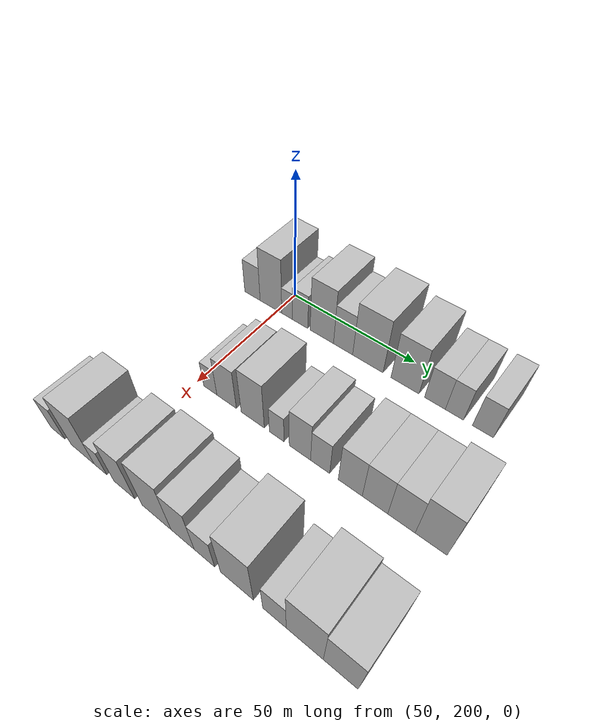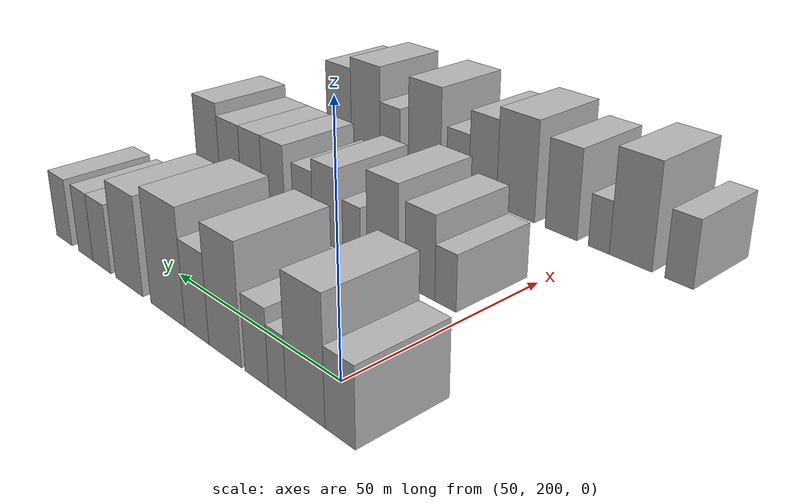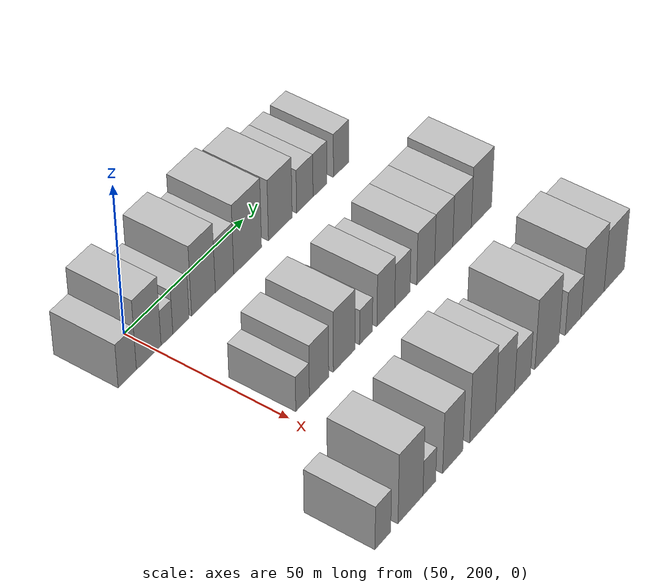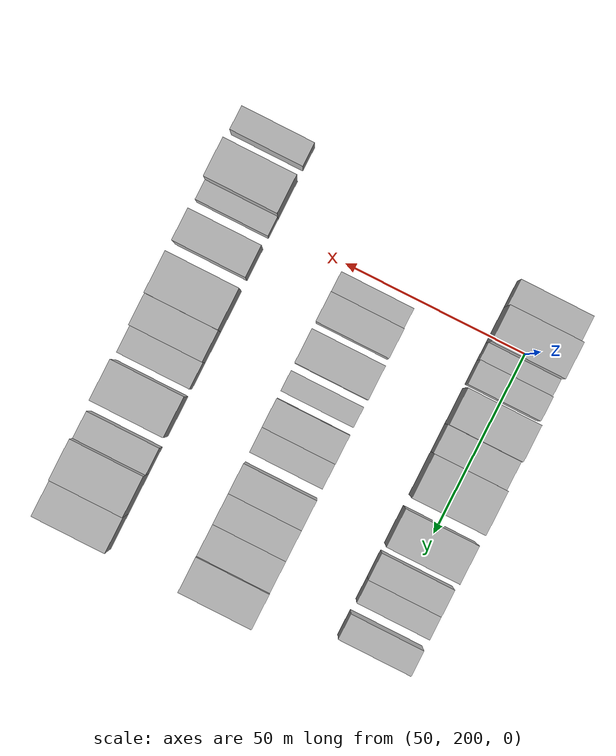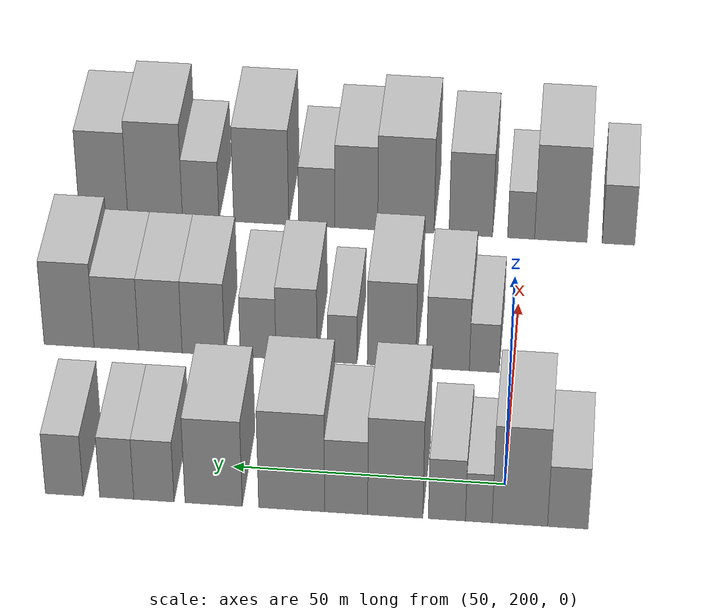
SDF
<sdf version="1.6">
 <world name="default">
  <model name="building_65">
   <static>1</static>
   <pose>50.0000 188.2694 0 0.000000 0.000000 0.000000</pose>
   <link name="link">
    <pose>0 0 7.50 0 0 0</pose>
    <collision name="collision"><geometry><box><size>20.0000 7.2713 15.0000</size></box></geometry></collision>
    <visual name="visual">
     <cast_shadows>0</cast_shadows>
     <geometry><box><size>20.0000 7.2713 15.0000</size></box></geometry>
     <material>
      <script>
       <uri>model://HANNAS_wall/materials/scripts</uri>
       <uri>model://HANNAS_wall/materials/textures</uri>
       <name>vrc/HANNAS_wall</name>
      </script>
     </material>
    </visual>
   </link>
  </model>
  <model name="building_66">
   <static>1</static>
   <pose>50.0000 196.8892 0 0.000000 0.000000 0.000000</pose>
   <link name="link">
    <pose>0 0 12.00 0 0 0</pose>
    <collision name="collision"><geometry><box><size>20.0000 9.9684 24.0000</size></box></geometry></collision>
    <visual name="visual">
     <cast_shadows>0</cast_shadows>
     <geometry><box><size>20.0000 9.9684 24.0000</size></box></geometry>
     <material>
      <script>
       <uri>model://HANNAS_wall/materials/scripts</uri>
       <uri>model://HANNAS_wall/materials/textures</uri>
       <name>vrc/HANNAS_wall</name>
      </script>
     </material>
    </visual>
   </link>
  </model>
  <model name="building_67">
   <static>1</static>
   <pose>50.0000 204.2798 0 0.000000 0.000000 0.000000</pose>
   <link name="link">
    <pose>0 0 6.00 0 0 0</pose>
    <collision name="collision"><geometry><box><size>20.0000 4.8129 12.0000</size></box></geometry></collision>
    <visual name="visual">
     <cast_shadows>0</cast_shadows>
     <geometry><box><size>20.0000 4.8129 12.0000</size></box></geometry>
     <material>
      <script>
       <uri>model://HANNAS_wall/materials/scripts</uri>
       <uri>model://HANNAS_wall/materials/textures</uri>
       <name>vrc/HANNAS_wall</name>
      </script>
     </material>
    </visual>
   </link>
  </model>
  <model name="building_68">
   <static>1</static>
   <pose>50.0000 210.0441 0 0.000000 0.000000 0.000000</pose>
   <link name="link">
    <pose>0 0 7.50 0 0 0</pose>
    <collision name="collision"><geometry><box><size>20.0000 6.7156 15.0000</size></box></geometry></collision>
    <visual name="visual">
     <cast_shadows>0</cast_shadows>
     <geometry><box><size>20.0000 6.7156 15.0000</size></box></geometry>
     <material>
      <script>
       <uri>model://HANNAS_wall/materials/scripts</uri>
       <uri>model://HANNAS_wall/materials/textures</uri>
       <name>vrc/HANNAS_wall</name>
      </script>
     </material>
    </visual>
   </link>
  </model>
  <model name="building_69">
   <static>1</static>
   <pose>50.0000 219.3858 0 0.000000 0.000000 0.000000</pose>
   <link name="link">
    <pose>0 0 12.00 0 0 0</pose>
    <collision name="collision"><geometry><box><size>20.0000 9.9680 24.0000</size></box></geometry></collision>
    <visual name="visual">
     <cast_shadows>0</cast_shadows>
     <geometry><box><size>20.0000 9.9680 24.0000</size></box></geometry>
     <material>
      <script>
       <uri>model://HANNAS_wall/materials/scripts</uri>
       <uri>model://HANNAS_wall/materials/textures</uri>
       <name>vrc/HANNAS_wall</name>
      </script>
     </material>
    </visual>
   </link>
  </model>
  <model name="building_70">
   <static>1</static>
   <pose>50.0000 228.2781 0 0.000000 0.000000 0.000000</pose>
   <link name="link">
    <pose>0 0 9.00 0 0 0</pose>
    <collision name="collision"><geometry><box><size>20.0000 7.8165 18.0000</size></box></geometry></collision>
    <visual name="visual">
     <cast_shadows>0</cast_shadows>
     <geometry><box><size>20.0000 7.8165 18.0000</size></box></geometry>
     <material>
      <script>
       <uri>model://HANNAS_wall/materials/scripts</uri>
       <uri>model://HANNAS_wall/materials/textures</uri>
       <name>vrc/HANNAS_wall</name>
      </script>
     </material>
    </visual>
   </link>
  </model>
  <model name="building_71">
   <static>1</static>
   <pose>50.0000 238.1825 0 0.000000 0.000000 0.000000</pose>
   <link name="link">
    <pose>0 0 12.00 0 0 0</pose>
    <collision name="collision"><geometry><box><size>20.0000 11.9923 24.0000</size></box></geometry></collision>
    <visual name="visual">
     <cast_shadows>0</cast_shadows>
     <geometry><box><size>20.0000 11.9923 24.0000</size></box></geometry>
     <material>
      <script>
       <uri>model://HANNAS_wall/materials/scripts</uri>
       <uri>model://HANNAS_wall/materials/textures</uri>
       <name>vrc/HANNAS_wall</name>
      </script>
     </material>
    </visual>
   </link>
  </model>
  <model name="building_72">
   <static>1</static>
   <pose>50.0000 252.4010 0 0.000000 0.000000 0.000000</pose>
   <link name="link">
    <pose>0 0 10.50 0 0 0</pose>
    <collision name="collision"><geometry><box><size>20.0000 10.4447 21.0000</size></box></geometry></collision>
    <visual name="visual">
     <cast_shadows>0</cast_shadows>
     <geometry><box><size>20.0000 10.4447 21.0000</size></box></geometry>
     <material>
      <script>
       <uri>model://HANNAS_wall/materials/scripts</uri>
       <uri>model://HANNAS_wall/materials/textures</uri>
       <name>vrc/HANNAS_wall</name>
      </script>
     </material>
    </visual>
   </link>
  </model>
  <model name="building_73">
   <static>1</static>
   <pose>50.0000 263.3073 0 0.000000 0.000000 0.000000</pose>
   <link name="link">
    <pose>0 0 7.50 0 0 0</pose>
    <collision name="collision"><geometry><box><size>20.0000 7.3680 15.0000</size></box></geometry></collision>
    <visual name="visual">
     <cast_shadows>0</cast_shadows>
     <geometry><box><size>20.0000 7.3680 15.0000</size></box></geometry>
     <material>
      <script>
       <uri>model://HANNAS_wall/materials/scripts</uri>
       <uri>model://HANNAS_wall/materials/textures</uri>
       <name>vrc/HANNAS_wall</name>
      </script>
     </material>
    </visual>
   </link>
  </model>
  <model name="building_74">
   <static>1</static>
   <pose>50.0000 270.1238 0 0.000000 0.000000 0.000000</pose>
   <link name="link">
    <pose>0 0 7.50 0 0 0</pose>
    <collision name="collision"><geometry><box><size>20.0000 6.2649 15.0000</size></box></geometry></collision>
    <visual name="visual">
     <cast_shadows>0</cast_shadows>
     <geometry><box><size>20.0000 6.2649 15.0000</size></box></geometry>
     <material>
      <script>
       <uri>model://HANNAS_wall/materials/scripts</uri>
       <uri>model://HANNAS_wall/materials/textures</uri>
       <name>vrc/HANNAS_wall</name>
      </script>
     </material>
    </visual>
   </link>
  </model>
  <model name="building_75">
   <static>1</static>
   <pose>50.0000 279.7421 0 0.000000 0.000000 0.000000</pose>
   <link name="link">
    <pose>0 0 7.50 0 0 0</pose>
    <collision name="collision"><geometry><box><size>20.0000 6.9716 15.0000</size></box></geometry></collision>
    <visual name="visual">
     <cast_shadows>0</cast_shadows>
     <geometry><box><size>20.0000 6.9716 15.0000</size></box></geometry>
     <material>
      <script>
       <uri>model://HANNAS_wall/materials/scripts</uri>
       <uri>model://HANNAS_wall/materials/textures</uri>
       <name>vrc/HANNAS_wall</name>
      </script>
     </material>
    </visual>
   </link>
  </model>
  <model name="building_153">
   <static>1</static>
   <pose>90.0000 205.6087 0 0.000000 0.000000 0.000000</pose>
   <link name="link">
    <pose>0 0 6.00 0 0 0</pose>
    <collision name="collision"><geometry><box><size>20.0000 5.6764 12.0000</size></box></geometry></collision>
    <visual name="visual">
     <cast_shadows>0</cast_shadows>
     <geometry><box><size>20.0000 5.6764 12.0000</size></box></geometry>
     <material>
      <script>
       <uri>model://HANNAS_wall/materials/scripts</uri>
       <uri>model://HANNAS_wall/materials/textures</uri>
       <name>vrc/HANNAS_wall</name>
      </script>
     </material>
    </visual>
   </link>
  </model>
  <model name="building_154">
   <static>1</static>
   <pose>90.0000 212.5434 0 0.000000 0.000000 0.000000</pose>
   <link name="link">
    <pose>0 0 9.00 0 0 0</pose>
    <collision name="collision"><geometry><box><size>20.0000 8.1929 18.0000</size></box></geometry></collision>
    <visual name="visual">
     <cast_shadows>0</cast_shadows>
     <geometry><box><size>20.0000 8.1929 18.0000</size></box></geometry>
     <material>
      <script>
       <uri>model://HANNAS_wall/materials/scripts</uri>
       <uri>model://HANNAS_wall/materials/textures</uri>
       <name>vrc/HANNAS_wall</name>
      </script>
     </material>
    </visual>
   </link>
  </model>
  <model name="building_155">
   <static>1</static>
   <pose>90.0000 223.2906 0 0.000000 0.000000 0.000000</pose>
   <link name="link">
    <pose>0 0 10.50 0 0 0</pose>
    <collision name="collision"><geometry><box><size>20.0000 9.3016 21.0000</size></box></geometry></collision>
    <visual name="visual">
     <cast_shadows>0</cast_shadows>
     <geometry><box><size>20.0000 9.3016 21.0000</size></box></geometry>
     <material>
      <script>
       <uri>model://HANNAS_wall/materials/scripts</uri>
       <uri>model://HANNAS_wall/materials/textures</uri>
       <name>vrc/HANNAS_wall</name>
      </script>
     </material>
    </visual>
   </link>
  </model>
  <model name="building_156">
   <static>1</static>
   <pose>90.0000 232.7520 0 0.000000 0.000000 0.000000</pose>
   <link name="link">
    <pose>0 0 6.00 0 0 0</pose>
    <collision name="collision"><geometry><box><size>20.0000 5.6211 12.0000</size></box></geometry></collision>
    <visual name="visual">
     <cast_shadows>0</cast_shadows>
     <geometry><box><size>20.0000 5.6211 12.0000</size></box></geometry>
     <material>
      <script>
       <uri>model://HANNAS_wall/materials/scripts</uri>
       <uri>model://HANNAS_wall/materials/textures</uri>
       <name>vrc/HANNAS_wall</name>
      </script>
     </material>
    </visual>
   </link>
  </model>
  <model name="building_157">
   <static>1</static>
   <pose>90.0000 241.5173 0 0.000000 0.000000 0.000000</pose>
   <link name="link">
    <pose>0 0 9.00 0 0 0</pose>
    <collision name="collision"><geometry><box><size>20.0000 7.9096 18.0000</size></box></geometry></collision>
    <visual name="visual">
     <cast_shadows>0</cast_shadows>
     <geometry><box><size>20.0000 7.9096 18.0000</size></box></geometry>
     <material>
      <script>
       <uri>model://HANNAS_wall/materials/scripts</uri>
       <uri>model://HANNAS_wall/materials/textures</uri>
       <name>vrc/HANNAS_wall</name>
      </script>
     </material>
    </visual>
   </link>
  </model>
  <model name="building_158">
   <static>1</static>
   <pose>90.0000 248.9060 0 0.000000 0.000000 0.000000</pose>
   <link name="link">
    <pose>0 0 7.50 0 0 0</pose>
    <collision name="collision"><geometry><box><size>20.0000 6.8679 15.0000</size></box></geometry></collision>
    <visual name="visual">
     <cast_shadows>0</cast_shadows>
     <geometry><box><size>20.0000 6.8679 15.0000</size></box></geometry>
     <material>
      <script>
       <uri>model://HANNAS_wall/materials/scripts</uri>
       <uri>model://HANNAS_wall/materials/textures</uri>
       <name>vrc/HANNAS_wall</name>
      </script>
     </material>
    </visual>
   </link>
  </model>
  <model name="building_159">
   <static>1</static>
   <pose>90.0000 259.4456 0 0.000000 0.000000 0.000000</pose>
   <link name="link">
    <pose>0 0 9.00 0 0 0</pose>
    <collision name="collision"><geometry><box><size>20.0000 8.2114 18.0000</size></box></geometry></collision>
    <visual name="visual">
     <cast_shadows>0</cast_shadows>
     <geometry><box><size>20.0000 8.2114 18.0000</size></box></geometry>
     <material>
      <script>
       <uri>model://HANNAS_wall/materials/scripts</uri>
       <uri>model://HANNAS_wall/materials/textures</uri>
       <name>vrc/HANNAS_wall</name>
      </script>
     </material>
    </visual>
   </link>
  </model>
  <model name="building_160">
   <static>1</static>
   <pose>90.0000 267.7454 0 0.000000 0.000000 0.000000</pose>
   <link name="link">
    <pose>0 0 9.00 0 0 0</pose>
    <collision name="collision"><geometry><box><size>20.0000 8.3880 18.0000</size></box></geometry></collision>
    <visual name="visual">
     <cast_shadows>0</cast_shadows>
     <geometry><box><size>20.0000 8.3880 18.0000</size></box></geometry>
     <material>
      <script>
       <uri>model://HANNAS_wall/materials/scripts</uri>
       <uri>model://HANNAS_wall/materials/textures</uri>
       <name>vrc/HANNAS_wall</name>
      </script>
     </material>
    </visual>
   </link>
  </model>
  <model name="building_161">
   <static>1</static>
   <pose>90.0000 276.2699 0 0.000000 0.000000 0.000000</pose>
   <link name="link">
    <pose>0 0 9.00 0 0 0</pose>
    <collision name="collision"><geometry><box><size>20.0000 8.6611 18.0000</size></box></geometry></collision>
    <visual name="visual">
     <cast_shadows>0</cast_shadows>
     <geometry><box><size>20.0000 8.6611 18.0000</size></box></geometry>
     <material>
      <script>
       <uri>model://HANNAS_wall/materials/scripts</uri>
       <uri>model://HANNAS_wall/materials/textures</uri>
       <name>vrc/HANNAS_wall</name>
      </script>
     </material>
    </visual>
   </link>
  </model>
  <model name="building_162">
   <static>1</static>
   <pose>90.0000 285.4371 0 0.000000 0.000000 0.000000</pose>
   <link name="link">
    <pose>0 0 10.50 0 0 0</pose>
    <collision name="collision"><geometry><box><size>20.0000 9.6733 21.0000</size></box></geometry></collision>
    <visual name="visual">
     <cast_shadows>0</cast_shadows>
     <geometry><box><size>20.0000 9.6733 21.0000</size></box></geometry>
     <material>
      <script>
       <uri>model://HANNAS_wall/materials/scripts</uri>
       <uri>model://HANNAS_wall/materials/textures</uri>
       <name>vrc/HANNAS_wall</name>
      </script>
     </material>
    </visual>
   </link>
  </model>
  <model name="building_238">
   <static>1</static>
   <pose>130.0000 181.0945 0 0.000000 0.000000 0.000000</pose>
   <link name="link">
    <pose>0 0 7.50 0 0 0</pose>
    <collision name="collision"><geometry><box><size>20.0000 6.4978 15.0000</size></box></geometry></collision>
    <visual name="visual">
     <cast_shadows>0</cast_shadows>
     <geometry><box><size>20.0000 6.4978 15.0000</size></box></geometry>
     <material>
      <script>
       <uri>model://HANNAS_wall/materials/scripts</uri>
       <uri>model://HANNAS_wall/materials/textures</uri>
       <name>vrc/HANNAS_wall</name>
      </script>
     </material>
    </visual>
   </link>
  </model>
  <model name="building_239">
   <static>1</static>
   <pose>130.0000 192.5923 0 0.000000 0.000000 0.000000</pose>
   <link name="link">
    <pose>0 0 12.00 0 0 0</pose>
    <collision name="collision"><geometry><box><size>20.0000 10.4980 24.0000</size></box></geometry></collision>
    <visual name="visual">
     <cast_shadows>0</cast_shadows>
     <geometry><box><size>20.0000 10.4980 24.0000</size></box></geometry>
     <material>
      <script>
       <uri>model://HANNAS_wall/materials/scripts</uri>
       <uri>model://HANNAS_wall/materials/textures</uri>
       <name>vrc/HANNAS_wall</name>
      </script>
     </material>
    </visual>
   </link>
  </model>
  <model name="building_240">
   <static>1</static>
   <pose>130.0000 200.5427 0 0.000000 0.000000 0.000000</pose>
   <link name="link">
    <pose>0 0 6.00 0 0 0</pose>
    <collision name="collision"><geometry><box><size>20.0000 5.4027 12.0000</size></box></geometry></collision>
    <visual name="visual">
     <cast_shadows>0</cast_shadows>
     <geometry><box><size>20.0000 5.4027 12.0000</size></box></geometry>
     <material>
      <script>
       <uri>model://HANNAS_wall/materials/scripts</uri>
       <uri>model://HANNAS_wall/materials/textures</uri>
       <name>vrc/HANNAS_wall</name>
      </script>
     </material>
    </visual>
   </link>
  </model>
  <model name="building_241">
   <static>1</static>
   <pose>130.0000 210.6199 0 0.000000 0.000000 0.000000</pose>
   <link name="link">
    <pose>0 0 10.50 0 0 0</pose>
    <collision name="collision"><geometry><box><size>20.0000 8.7517 21.0000</size></box></geometry></collision>
    <visual name="visual">
     <cast_shadows>0</cast_shadows>
     <geometry><box><size>20.0000 8.7517 21.0000</size></box></geometry>
     <material>
      <script>
       <uri>model://HANNAS_wall/materials/scripts</uri>
       <uri>model://HANNAS_wall/materials/textures</uri>
       <name>vrc/HANNAS_wall</name>
      </script>
     </material>
    </visual>
   </link>
  </model>
  <model name="building_242">
   <static>1</static>
   <pose>130.0000 223.6696 0 0.000000 0.000000 0.000000</pose>
   <link name="link">
    <pose>0 0 12.00 0 0 0</pose>
    <collision name="collision"><geometry><box><size>20.0000 11.3479 24.0000</size></box></geometry></collision>
    <visual name="visual">
     <cast_shadows>0</cast_shadows>
     <geometry><box><size>20.0000 11.3479 24.0000</size></box></geometry>
     <material>
      <script>
       <uri>model://HANNAS_wall/materials/scripts</uri>
       <uri>model://HANNAS_wall/materials/textures</uri>
       <name>vrc/HANNAS_wall</name>
      </script>
     </material>
    </visual>
   </link>
  </model>
  <model name="building_243">
   <static>1</static>
   <pose>130.0000 233.6617 0 0.000000 0.000000 0.000000</pose>
   <link name="link">
    <pose>0 0 10.50 0 0 0</pose>
    <collision name="collision"><geometry><box><size>20.0000 8.6363 21.0000</size></box></geometry></collision>
    <visual name="visual">
     <cast_shadows>0</cast_shadows>
     <geometry><box><size>20.0000 8.6363 21.0000</size></box></geometry>
     <material>
      <script>
       <uri>model://HANNAS_wall/materials/scripts</uri>
       <uri>model://HANNAS_wall/materials/textures</uri>
       <name>vrc/HANNAS_wall</name>
      </script>
     </material>
    </visual>
   </link>
  </model>
  <model name="building_244">
   <static>1</static>
   <pose>130.0000 241.6461 0 0.000000 0.000000 0.000000</pose>
   <link name="link">
    <pose>0 0 7.50 0 0 0</pose>
    <collision name="collision"><geometry><box><size>20.0000 7.3326 15.0000</size></box></geometry></collision>
    <visual name="visual">
     <cast_shadows>0</cast_shadows>
     <geometry><box><size>20.0000 7.3326 15.0000</size></box></geometry>
     <material>
      <script>
       <uri>model://HANNAS_wall/materials/scripts</uri>
       <uri>model://HANNAS_wall/materials/textures</uri>
       <name>vrc/HANNAS_wall</name>
      </script>
     </material>
    </visual>
   </link>
  </model>
  <model name="building_245">
   <static>1</static>
   <pose>130.0000 252.8857 0 0.000000 0.000000 0.000000</pose>
   <link name="link">
    <pose>0 0 12.00 0 0 0</pose>
    <collision name="collision"><geometry><box><size>20.0000 11.1465 24.0000</size></box></geometry></collision>
    <visual name="visual">
     <cast_shadows>0</cast_shadows>
     <geometry><box><size>20.0000 11.1465 24.0000</size></box></geometry>
     <material>
      <script>
       <uri>model://HANNAS_wall/materials/scripts</uri>
       <uri>model://HANNAS_wall/materials/textures</uri>
       <name>vrc/HANNAS_wall</name>
      </script>
     </material>
    </visual>
   </link>
  </model>
  <model name="building_246">
   <static>1</static>
   <pose>130.0000 265.1702 0 0.000000 0.000000 0.000000</pose>
   <link name="link">
    <pose>0 0 7.50 0 0 0</pose>
    <collision name="collision"><geometry><box><size>20.0000 7.4227 15.0000</size></box></geometry></collision>
    <visual name="visual">
     <cast_shadows>0</cast_shadows>
     <geometry><box><size>20.0000 7.4227 15.0000</size></box></geometry>
     <material>
      <script>
       <uri>model://HANNAS_wall/materials/scripts</uri>
       <uri>model://HANNAS_wall/materials/textures</uri>
       <name>vrc/HANNAS_wall</name>
      </script>
     </material>
    </visual>
   </link>
  </model>
  <model name="building_247">
   <static>1</static>
   <pose>130.0000 274.4656 0 0.000000 0.000000 0.000000</pose>
   <link name="link">
    <pose>0 0 12.00 0 0 0</pose>
    <collision name="collision"><geometry><box><size>20.0000 11.1680 24.0000</size></box></geometry></collision>
    <visual name="visual">
     <cast_shadows>0</cast_shadows>
     <geometry><box><size>20.0000 11.1680 24.0000</size></box></geometry>
     <material>
      <script>
       <uri>model://HANNAS_wall/materials/scripts</uri>
       <uri>model://HANNAS_wall/materials/textures</uri>
       <name>vrc/HANNAS_wall</name>
      </script>
     </material>
    </visual>
   </link>
  </model>
  <model name="building_248">
   <static>1</static>
   <pose>130.0000 285.0008 0 0.000000 0.000000 0.000000</pose>
   <link name="link">
    <pose>0 0 10.50 0 0 0</pose>
    <collision name="collision"><geometry><box><size>20.0000 9.9024 21.0000</size></box></geometry></collision>
    <visual name="visual">
     <cast_shadows>0</cast_shadows>
     <geometry><box><size>20.0000 9.9024 21.0000</size></box></geometry>
     <material>
      <script>
       <uri>model://HANNAS_wall/materials/scripts</uri>
       <uri>model://HANNAS_wall/materials/textures</uri>
       <name>vrc/HANNAS_wall</name>
      </script>
     </material>
    </visual>
   </link>
  </model>
 </world>
</sdf>
